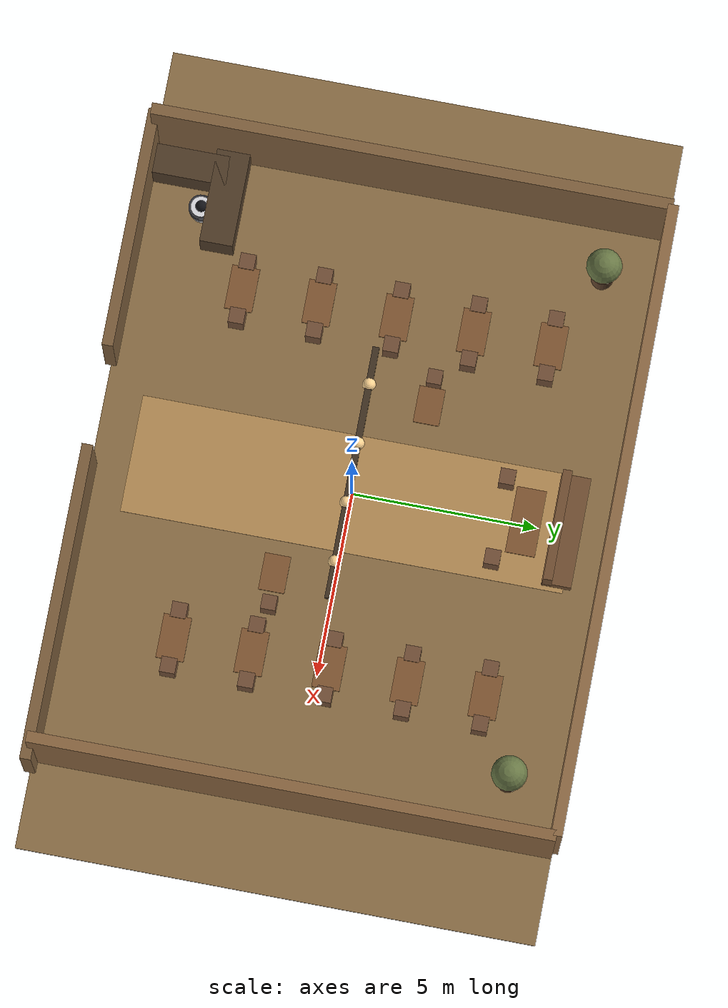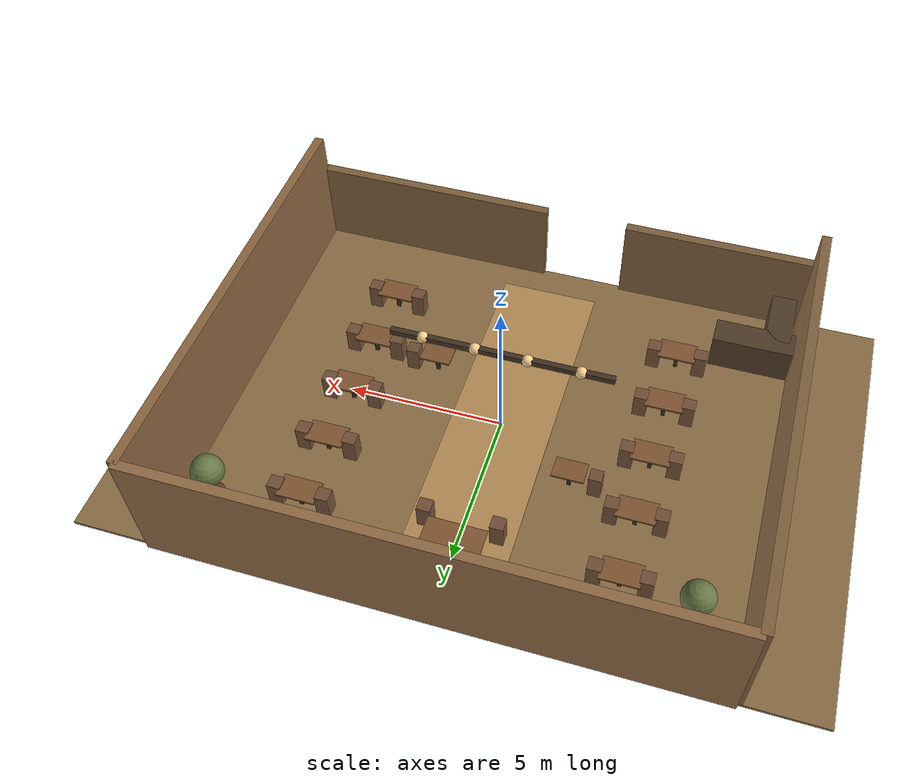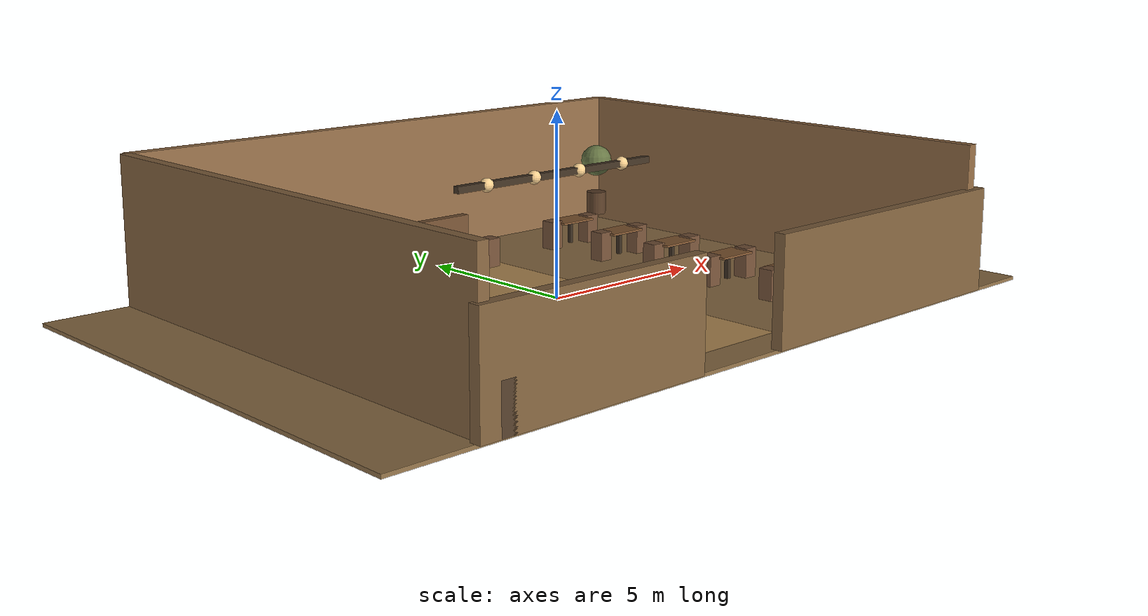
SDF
<?xml version="1.0" ?>
<sdf version="1.9">
  <world name="restaurant_world_warm_dense">

    <gravity>0 0 -9.8</gravity>

    <physics name="default_physics" type="ode">
      <max_step_size>0.008</max_step_size>
      <real_time_factor>1.0</real_time_factor>
    </physics>

    <plugin filename="gz-sim-physics-system" name="gz::sim::systems::Physics"/>
    <plugin filename="gz-sim-user-commands-system" name="gz::sim::systems::UserCommands"/>
    <plugin filename="gz-sim-scene-broadcaster-system" name="gz::sim::systems::SceneBroadcaster"/>

    <scene>
      <ambient>0.22 0.18 0.12 1</ambient>
      <background>0.20 0.16 0.12 1</background>
      <shadows>false</shadows>
    </scene>

    <!-- =========================
         LIGHTING - warm and lighter on performance
         ========================= -->
    <light name="soft_fill" type="directional">
      <cast_shadows>false</cast_shadows>
      <pose>0 0 20 0 0 0</pose>
      <diffuse>0.45 0.36 0.24 1</diffuse>
      <specular>0.03 0.03 0.03 1</specular>
      <direction>-0.2 0.1 -0.97</direction>
    </light>

    <light name="main_warm_1" type="point">
      <pose>-3.0 0.0 3.0 0 0 0</pose>
      <diffuse>0.95 0.74 0.42 1</diffuse>
      <specular>0.08 0.06 0.04 1</specular>
      <attenuation>
        <range>18</range>
        <constant>0.45</constant>
        <linear>0.018</linear>
        <quadratic>0.0012</quadratic>
      </attenuation>
      <cast_shadows>false</cast_shadows>
    </light>

    <light name="main_warm_2" type="point">
      <pose>0.0 0.0 3.0 0 0 0</pose>
      <diffuse>0.95 0.74 0.42 1</diffuse>
      <specular>0.08 0.06 0.04 1</specular>
      <attenuation>
        <range>18</range>
        <constant>0.45</constant>
        <linear>0.018</linear>
        <quadratic>0.0012</quadratic>
      </attenuation>
      <cast_shadows>false</cast_shadows>
    </light>

    <light name="main_warm_3" type="point">
      <pose>3.0 0.0 3.0 0 0 0</pose>
      <diffuse>0.95 0.74 0.42 1</diffuse>
      <specular>0.08 0.06 0.04 1</specular>
      <attenuation>
        <range>18</range>
        <constant>0.45</constant>
        <linear>0.018</linear>
        <quadratic>0.0012</quadratic>
      </attenuation>
      <cast_shadows>false</cast_shadows>
    </light>

    <light name="rear_warm" type="point">
      <pose>0.0 5.3 2.7 0 0 0</pose>
      <diffuse>0.85 0.66 0.38 1</diffuse>
      <specular>0.06 0.05 0.03 1</specular>
      <attenuation>
        <range>10</range>
        <constant>0.55</constant>
        <linear>0.025</linear>
        <quadratic>0.0018</quadratic>
      </attenuation>
      <cast_shadows>false</cast_shadows>
    </light>

    <!-- =========================
         FLOOR
         ========================= -->
    <model name="floor_main">
      <static>true</static>
      <pose>0 0 0 0 0 0</pose>
      <link name="link">
        <collision name="collision">
          <geometry><box><size>22 14 0.1</size></box></geometry>
          <pose>0 0 -0.05 0 0 0</pose>
        </collision>
        <visual name="visual">
          <geometry><box><size>22 14 0.1</size></box></geometry>
          <pose>0 0 -0.05 0 0 0</pose>
          <material>
            <ambient>0.40 0.31 0.20 1</ambient>
            <diffuse>0.56 0.44 0.28 1</diffuse>
            <specular>0.06 0.05 0.04 1</specular>
          </material>
        </visual>
      </link>
    </model>

    <model name="main_path">
      <static>true</static>
      <pose>0 0 0.006 0 0 0</pose>
      <link name="link">
        <visual name="visual">
          <geometry><box><size>3.2 12.0 0.01</size></box></geometry>
          <material>
            <ambient>0.56 0.43 0.26 1</ambient>
            <diffuse>0.72 0.56 0.34 1</diffuse>
            <specular>0.04 0.03 0.02 1</specular>
          </material>
        </visual>
      </link>
    </model>

    <!-- =========================
         WALLS
         ========================= -->
    <model name="east_wall">
      <static>true</static>
      <pose>8.5 0 2.0 0 0 0</pose>
      <link name="link">
        <collision name="collision"><geometry><box><size>0.30 14.0 4.0</size></box></geometry></collision>
        <visual name="visual">
          <geometry><box><size>0.30 14.0 4.0</size></box></geometry>
          <material>
            <ambient>0.38 0.28 0.18 1</ambient>
            <diffuse>0.56 0.41 0.26 1</diffuse>
            <specular>0.03 0.03 0.02 1</specular>
          </material>
        </visual>
      </link>
    </model>

    <model name="west_wall">
      <static>true</static>
      <pose>-8.5 0 2.0 0 0 0</pose>
      <link name="link">
        <collision name="collision"><geometry><box><size>0.30 14.0 4.0</size></box></geometry></collision>
        <visual name="visual">
          <geometry><box><size>0.30 14.0 4.0</size></box></geometry>
          <material>
            <ambient>0.36 0.27 0.18 1</ambient>
            <diffuse>0.52 0.39 0.25 1</diffuse>
            <specular>0.03 0.03 0.02 1</specular>
          </material>
        </visual>
      </link>
    </model>

    <model name="north_wall">
      <static>true</static>
      <pose>0 7 2.0 0 0 0</pose>
      <link name="link">
        <collision name="collision"><geometry><box><size>17.0 0.30 4.0</size></box></geometry></collision>
        <visual name="visual">
          <geometry><box><size>17.0 0.30 4.0</size></box></geometry>
          <material>
            <ambient>0.40 0.30 0.20 1</ambient>
            <diffuse>0.58 0.43 0.28 1</diffuse>
            <specular>0.03 0.03 0.02 1</specular>
          </material>
        </visual>
      </link>
    </model>

    <model name="south_wall_left">
      <static>true</static>
      <pose>-5.5 -7 1.4 0 0 0</pose>
      <link name="link">
        <collision name="collision"><geometry><box><size>6.5 0.30 2.8</size></box></geometry></collision>
        <visual name="visual">
          <geometry><box><size>6.5 0.30 2.8</size></box></geometry>
          <material>
            <ambient>0.34 0.26 0.17 1</ambient>
            <diffuse>0.50 0.38 0.24 1</diffuse>
          </material>
        </visual>
      </link>
    </model>

    <model name="south_wall_right">
      <static>true</static>
      <pose>4.7 -7 1.4 0 0 0</pose>
      <link name="link">
        <collision name="collision"><geometry><box><size>8.5 0.30 2.8</size></box></geometry></collision>
        <visual name="visual">
          <geometry><box><size>8.5 0.30 2.8</size></box></geometry>
          <material>
            <ambient>0.34 0.26 0.17 1</ambient>
            <diffuse>0.50 0.38 0.24 1</diffuse>
          </material>
        </visual>
      </link>
    </model>

    <!-- =========================
         CEILING BAR
         ========================= -->
    <model name="ceiling_bar">
      <static>true</static>
      <pose>0 0 3.35 0 0 0</pose>
      <link name="link">
        <visual name="bar">
          <geometry><box><size>6.8 0.18 0.18</size></box></geometry>
          <material>
            <ambient>0.18 0.14 0.10 1</ambient>
            <diffuse>0.26 0.20 0.14 1</diffuse>
          </material>
        </visual>
        <visual name="glow_a">
          <pose>-2.4 0 0 0 0 0</pose>
          <geometry><sphere><radius>0.18</radius></sphere></geometry>
          <material><ambient>1.0 0.90 0.70 1</ambient><diffuse>1.0 0.84 0.58 1</diffuse></material>
        </visual>
        <visual name="glow_b">
          <pose>-0.8 0 0 0 0 0</pose>
          <geometry><sphere><radius>0.18</radius></sphere></geometry>
          <material><ambient>1.0 0.90 0.70 1</ambient><diffuse>1.0 0.84 0.58 1</diffuse></material>
        </visual>
        <visual name="glow_c">
          <pose>0.8 0 0 0 0 0</pose>
          <geometry><sphere><radius>0.18</radius></sphere></geometry>
          <material><ambient>1.0 0.90 0.70 1</ambient><diffuse>1.0 0.84 0.58 1</diffuse></material>
        </visual>
        <visual name="glow_d">
          <pose>2.4 0 0 0 0 0</pose>
          <geometry><sphere><radius>0.18</radius></sphere></geometry>
          <material><ambient>1.0 0.90 0.70 1</ambient><diffuse>1.0 0.84 0.58 1</diffuse></material>
        </visual>
      </link>
    </model>

    <!-- =========================
         SERVICE AREA
         ========================= -->
    <model name="service_counter_left">
      <static>true</static>
      <pose>-7.2 -4.8 0.60 0 0 0</pose>
      <link name="link">
        <collision name="collision"><geometry><box><size>2.8 0.9 1.2</size></box></geometry></collision>
        <visual name="visual">
          <geometry><box><size>2.8 0.9 1.2</size></box></geometry>
          <material>
            <ambient>0.22 0.16 0.11 1</ambient>
            <diffuse>0.32 0.24 0.16 1</diffuse>
            <specular>0.04 0.03 0.02 1</specular>
          </material>
        </visual>
      </link>
    </model>

    <model name="service_counter_back">
      <static>true</static>
      <pose>-7.8 -6.0 0.60 0 0 1.5708</pose>
      <link name="link">
        <collision name="collision"><geometry><box><size>2.3 0.8 1.2</size></box></geometry></collision>
        <visual name="visual">
          <geometry><box><size>2.3 0.8 1.2</size></box></geometry>
          <material>
            <ambient>0.22 0.16 0.11 1</ambient>
            <diffuse>0.32 0.24 0.16 1</diffuse>
            <specular>0.04 0.03 0.02 1</specular>
          </material>
        </visual>
      </link>
    </model>

    <!-- =========================
         DECOR
         ========================= -->
    <model name="plant_left">
      <static>true</static>
      <pose>-6.9 5.5 0.55 0 0 0</pose>
      <link name="link">
        <visual name="pot">
          <pose>0 0 0.35 0 0 0</pose>
          <geometry><cylinder><radius>0.30</radius><length>0.70</length></cylinder></geometry>
          <material><ambient>0.26 0.18 0.12 1</ambient><diffuse>0.36 0.25 0.16 1</diffuse></material>
        </visual>
        <visual name="leaf">
          <pose>0 0 1.7 0 0 0</pose>
          <geometry><sphere><radius>0.48</radius></sphere></geometry>
          <material><ambient>0.30 0.34 0.20 1</ambient><diffuse>0.42 0.48 0.28 1</diffuse></material>
        </visual>
      </link>
    </model>

    <model name="plant_right">
      <static>true</static>
      <pose>6.9 5.5 0.55 0 0 0</pose>
      <link name="link">
        <visual name="pot">
          <pose>0 0 0.35 0 0 0</pose>
          <geometry><cylinder><radius>0.30</radius><length>0.70</length></cylinder></geometry>
          <material><ambient>0.26 0.18 0.12 1</ambient><diffuse>0.36 0.25 0.16 1</diffuse></material>
        </visual>
        <visual name="leaf">
          <pose>0 0 1.7 0 0 0</pose>
          <geometry><sphere><radius>0.48</radius></sphere></geometry>
          <material><ambient>0.30 0.34 0.20 1</ambient><diffuse>0.42 0.48 0.28 1</diffuse></material>
        </visual>
      </link>
    </model>

    <!-- =========================
         TABLES AND CHAIRS - increased quantity
         ========================= -->

    <!-- Left side tables -->
    <model name="table_a">
      <static>true</static><pose>-4.8 4.5 0.76 0 0 0</pose>
      <link name="link">
        <collision name="collision"><geometry><box><size>1.20 0.75 0.06</size></box></geometry></collision>
        <visual name="top"><geometry><box><size>1.20 0.75 0.06</size></box></geometry><material><ambient>0.36 0.24 0.14 1</ambient><diffuse>0.52 0.35 0.20 1</diffuse></material></visual>
        <visual name="leg"><pose>0 0 -0.35 0 0 0</pose><geometry><box><size>0.12 0.12 0.70</size></box></geometry><material><ambient>0.16 0.12 0.09 1</ambient><diffuse>0.22 0.17 0.12 1</diffuse></material></visual>
      </link>
    </model>
    <model name="chair_a1"><static>true</static><pose>-5.55 4.5 0.42 0 0 0</pose><link name="link"><visual name="v"><geometry><box><size>0.42 0.42 0.84</size></box></geometry><material><ambient>0.34 0.24 0.16 1</ambient><diffuse>0.46 0.32 0.22 1</diffuse></material></visual></link></model>
    <model name="chair_a2"><static>true</static><pose>-4.05 4.5 0.42 0 0 0</pose><link name="link"><visual name="v"><geometry><box><size>0.42 0.42 0.84</size></box></geometry><material><ambient>0.34 0.24 0.16 1</ambient><diffuse>0.46 0.32 0.22 1</diffuse></material></visual></link></model>

    <model name="table_b">
      <static>true</static><pose>-4.8 2.4 0.76 0 0 0</pose>
      <link name="link">
        <collision name="collision"><geometry><box><size>1.20 0.75 0.06</size></box></geometry></collision>
        <visual name="top"><geometry><box><size>1.20 0.75 0.06</size></box></geometry><material><ambient>0.36 0.24 0.14 1</ambient><diffuse>0.52 0.35 0.20 1</diffuse></material></visual>
        <visual name="leg"><pose>0 0 -0.35 0 0 0</pose><geometry><box><size>0.12 0.12 0.70</size></box></geometry><material><ambient>0.16 0.12 0.09 1</ambient><diffuse>0.22 0.17 0.12 1</diffuse></material></visual>
      </link>
    </model>
    <model name="chair_b1"><static>true</static><pose>-5.55 2.4 0.42 0 0 0</pose><link name="link"><visual name="v"><geometry><box><size>0.42 0.42 0.84</size></box></geometry><material><ambient>0.34 0.24 0.16 1</ambient><diffuse>0.46 0.32 0.22 1</diffuse></material></visual></link></model>
    <model name="chair_b2"><static>true</static><pose>-4.05 2.4 0.42 0 0 0</pose><link name="link"><visual name="v"><geometry><box><size>0.42 0.42 0.84</size></box></geometry><material><ambient>0.34 0.24 0.16 1</ambient><diffuse>0.46 0.32 0.22 1</diffuse></material></visual></link></model>

    <model name="table_c">
      <static>true</static><pose>-4.8 0.3 0.76 0 0 0</pose>
      <link name="link">
        <collision name="collision"><geometry><box><size>1.20 0.75 0.06</size></box></geometry></collision>
        <visual name="top"><geometry><box><size>1.20 0.75 0.06</size></box></geometry><material><ambient>0.36 0.24 0.14 1</ambient><diffuse>0.52 0.35 0.20 1</diffuse></material></visual>
        <visual name="leg"><pose>0 0 -0.35 0 0 0</pose><geometry><box><size>0.12 0.12 0.70</size></box></geometry><material><ambient>0.16 0.12 0.09 1</ambient><diffuse>0.22 0.17 0.12 1</diffuse></material></visual>
      </link>
    </model>
    <model name="chair_c1"><static>true</static><pose>-5.55 0.3 0.42 0 0 0</pose><link name="link"><visual name="v"><geometry><box><size>0.42 0.42 0.84</size></box></geometry><material><ambient>0.34 0.24 0.16 1</ambient><diffuse>0.46 0.32 0.22 1</diffuse></material></visual></link></model>
    <model name="chair_c2"><static>true</static><pose>-4.05 0.3 0.42 0 0 0</pose><link name="link"><visual name="v"><geometry><box><size>0.42 0.42 0.84</size></box></geometry><material><ambient>0.34 0.24 0.16 1</ambient><diffuse>0.46 0.32 0.22 1</diffuse></material></visual></link></model>

    <model name="table_d">
      <static>true</static><pose>-4.8 -1.8 0.76 0 0 0</pose>
      <link name="link">
        <collision name="collision"><geometry><box><size>1.20 0.75 0.06</size></box></geometry></collision>
        <visual name="top"><geometry><box><size>1.20 0.75 0.06</size></box></geometry><material><ambient>0.36 0.24 0.14 1</ambient><diffuse>0.52 0.35 0.20 1</diffuse></material></visual>
        <visual name="leg"><pose>0 0 -0.35 0 0 0</pose><geometry><box><size>0.12 0.12 0.70</size></box></geometry><material><ambient>0.16 0.12 0.09 1</ambient><diffuse>0.22 0.17 0.12 1</diffuse></material></visual>
      </link>
    </model>
    <model name="chair_d1"><static>true</static><pose>-5.55 -1.8 0.42 0 0 0</pose><link name="link"><visual name="v"><geometry><box><size>0.42 0.42 0.84</size></box></geometry><material><ambient>0.34 0.24 0.16 1</ambient><diffuse>0.46 0.32 0.22 1</diffuse></material></visual></link></model>
    <model name="chair_d2"><static>true</static><pose>-4.05 -1.8 0.42 0 0 0</pose><link name="link"><visual name="v"><geometry><box><size>0.42 0.42 0.84</size></box></geometry><material><ambient>0.34 0.24 0.16 1</ambient><diffuse>0.46 0.32 0.22 1</diffuse></material></visual></link></model>

    <model name="table_e">
      <static>true</static><pose>-4.8 -3.9 0.76 0 0 0</pose>
      <link name="link">
        <collision name="collision"><geometry><box><size>1.20 0.75 0.06</size></box></geometry></collision>
        <visual name="top"><geometry><box><size>1.20 0.75 0.06</size></box></geometry><material><ambient>0.36 0.24 0.14 1</ambient><diffuse>0.52 0.35 0.20 1</diffuse></material></visual>
        <visual name="leg"><pose>0 0 -0.35 0 0 0</pose><geometry><box><size>0.12 0.12 0.70</size></box></geometry><material><ambient>0.16 0.12 0.09 1</ambient><diffuse>0.22 0.17 0.12 1</diffuse></material></visual>
      </link>
    </model>
    <model name="chair_e1"><static>true</static><pose>-5.55 -3.9 0.42 0 0 0</pose><link name="link"><visual name="v"><geometry><box><size>0.42 0.42 0.84</size></box></geometry><material><ambient>0.34 0.24 0.16 1</ambient><diffuse>0.46 0.32 0.22 1</diffuse></material></visual></link></model>
    <model name="chair_e2"><static>true</static><pose>-4.05 -3.9 0.42 0 0 0</pose><link name="link"><visual name="v"><geometry><box><size>0.42 0.42 0.84</size></box></geometry><material><ambient>0.34 0.24 0.16 1</ambient><diffuse>0.46 0.32 0.22 1</diffuse></material></visual></link></model>

    <!-- Right side tables -->
    <model name="table_f">
      <static>true</static><pose>4.8 4.5 0.76 0 0 0</pose>
      <link name="link">
        <collision name="collision"><geometry><box><size>1.20 0.75 0.06</size></box></geometry></collision>
        <visual name="top"><geometry><box><size>1.20 0.75 0.06</size></box></geometry><material><ambient>0.36 0.24 0.14 1</ambient><diffuse>0.52 0.35 0.20 1</diffuse></material></visual>
        <visual name="leg"><pose>0 0 -0.35 0 0 0</pose><geometry><box><size>0.12 0.12 0.70</size></box></geometry><material><ambient>0.16 0.12 0.09 1</ambient><diffuse>0.22 0.17 0.12 1</diffuse></material></visual>
      </link>
    </model>
    <model name="chair_f1"><static>true</static><pose>4.05 4.5 0.42 0 0 0</pose><link name="link"><visual name="v"><geometry><box><size>0.42 0.42 0.84</size></box></geometry><material><ambient>0.34 0.24 0.16 1</ambient><diffuse>0.46 0.32 0.22 1</diffuse></material></visual></link></model>
    <model name="chair_f2"><static>true</static><pose>5.55 4.5 0.42 0 0 0</pose><link name="link"><visual name="v"><geometry><box><size>0.42 0.42 0.84</size></box></geometry><material><ambient>0.34 0.24 0.16 1</ambient><diffuse>0.46 0.32 0.22 1</diffuse></material></visual></link></model>

    <model name="table_g">
      <static>true</static><pose>4.8 2.4 0.76 0 0 0</pose>
      <link name="link">
        <collision name="collision"><geometry><box><size>1.20 0.75 0.06</size></box></geometry></collision>
        <visual name="top"><geometry><box><size>1.20 0.75 0.06</size></box></geometry><material><ambient>0.36 0.24 0.14 1</ambient><diffuse>0.52 0.35 0.20 1</diffuse></material></visual>
        <visual name="leg"><pose>0 0 -0.35 0 0 0</pose><geometry><box><size>0.12 0.12 0.70</size></box></geometry><material><ambient>0.16 0.12 0.09 1</ambient><diffuse>0.22 0.17 0.12 1</diffuse></material></visual>
      </link>
    </model>
    <model name="chair_g1"><static>true</static><pose>4.05 2.4 0.42 0 0 0</pose><link name="link"><visual name="v"><geometry><box><size>0.42 0.42 0.84</size></box></geometry><material><ambient>0.34 0.24 0.16 1</ambient><diffuse>0.46 0.32 0.22 1</diffuse></material></visual></link></model>
    <model name="chair_g2"><static>true</static><pose>5.55 2.4 0.42 0 0 0</pose><link name="link"><visual name="v"><geometry><box><size>0.42 0.42 0.84</size></box></geometry><material><ambient>0.34 0.24 0.16 1</ambient><diffuse>0.46 0.32 0.22 1</diffuse></material></visual></link></model>

    <model name="table_h">
      <static>true</static><pose>4.8 0.3 0.76 0 0 0</pose>
      <link name="link">
        <collision name="collision"><geometry><box><size>1.20 0.75 0.06</size></box></geometry></collision>
        <visual name="top"><geometry><box><size>1.20 0.75 0.06</size></box></geometry><material><ambient>0.36 0.24 0.14 1</ambient><diffuse>0.52 0.35 0.20 1</diffuse></material></visual>
        <visual name="leg"><pose>0 0 -0.35 0 0 0</pose><geometry><box><size>0.12 0.12 0.70</size></box></geometry><material><ambient>0.16 0.12 0.09 1</ambient><diffuse>0.22 0.17 0.12 1</diffuse></material></visual>
      </link>
    </model>
    <model name="chair_h1"><static>true</static><pose>4.05 0.3 0.42 0 0 0</pose><link name="link"><visual name="v"><geometry><box><size>0.42 0.42 0.84</size></box></geometry><material><ambient>0.34 0.24 0.16 1</ambient><diffuse>0.46 0.32 0.22 1</diffuse></material></visual></link></model>
    <model name="chair_h2"><static>true</static><pose>5.55 0.3 0.42 0 0 0</pose><link name="link"><visual name="v"><geometry><box><size>0.42 0.42 0.84</size></box></geometry><material><ambient>0.34 0.24 0.16 1</ambient><diffuse>0.46 0.32 0.22 1</diffuse></material></visual></link></model>

    <model name="table_i">
      <static>true</static><pose>4.8 -1.8 0.76 0 0 0</pose>
      <link name="link">
        <collision name="collision"><geometry><box><size>1.20 0.75 0.06</size></box></geometry></collision>
        <visual name="top"><geometry><box><size>1.20 0.75 0.06</size></box></geometry><material><ambient>0.36 0.24 0.14 1</ambient><diffuse>0.52 0.35 0.20 1</diffuse></material></visual>
        <visual name="leg"><pose>0 0 -0.35 0 0 0</pose><geometry><box><size>0.12 0.12 0.70</size></box></geometry><material><ambient>0.16 0.12 0.09 1</ambient><diffuse>0.22 0.17 0.12 1</diffuse></material></visual>
      </link>
    </model>
    <model name="chair_i1"><static>true</static><pose>4.05 -1.8 0.42 0 0 0</pose><link name="link"><visual name="v"><geometry><box><size>0.42 0.42 0.84</size></box></geometry><material><ambient>0.34 0.24 0.16 1</ambient><diffuse>0.46 0.32 0.22 1</diffuse></material></visual></link></model>
    <model name="chair_i2"><static>true</static><pose>5.55 -1.8 0.42 0 0 0</pose><link name="link"><visual name="v"><geometry><box><size>0.42 0.42 0.84</size></box></geometry><material><ambient>0.34 0.24 0.16 1</ambient><diffuse>0.46 0.32 0.22 1</diffuse></material></visual></link></model>

    <model name="table_j">
      <static>true</static><pose>4.8 -3.9 0.76 0 0 0</pose>
      <link name="link">
        <collision name="collision"><geometry><box><size>1.20 0.75 0.06</size></box></geometry></collision>
        <visual name="top"><geometry><box><size>1.20 0.75 0.06</size></box></geometry><material><ambient>0.36 0.24 0.14 1</ambient><diffuse>0.52 0.35 0.20 1</diffuse></material></visual>
        <visual name="leg"><pose>0 0 -0.35 0 0 0</pose><geometry><box><size>0.12 0.12 0.70</size></box></geometry><material><ambient>0.16 0.12 0.09 1</ambient><diffuse>0.22 0.17 0.12 1</diffuse></material></visual>
      </link>
    </model>
    <model name="chair_j1"><static>true</static><pose>4.05 -3.9 0.42 0 0 0</pose><link name="link"><visual name="v"><geometry><box><size>0.42 0.42 0.84</size></box></geometry><material><ambient>0.34 0.24 0.16 1</ambient><diffuse>0.46 0.32 0.22 1</diffuse></material></visual></link></model>
    <model name="chair_j2"><static>true</static><pose>5.55 -3.9 0.42 0 0 0</pose><link name="link"><visual name="v"><geometry><box><size>0.42 0.42 0.84</size></box></geometry><material><ambient>0.34 0.24 0.16 1</ambient><diffuse>0.46 0.32 0.22 1</diffuse></material></visual></link></model>

    <!-- Rear wall booth -->
    <model name="rear_bench">
      <static>true</static><pose>0 5.8 0.35 0 0 0</pose>
      <link name="link">
        <visual name="seat"><geometry><box><size>3.0 0.8 0.42</size></box></geometry><material><ambient>0.32 0.22 0.14 1</ambient><diffuse>0.46 0.32 0.20 1</diffuse></material></visual>
        <visual name="back"><pose>0 -0.25 0.45 0 0 0</pose><geometry><box><size>3.0 0.25 0.90</size></box></geometry><material><ambient>0.32 0.22 0.14 1</ambient><diffuse>0.46 0.32 0.20 1</diffuse></material></visual>
      </link>
    </model>

    <model name="rear_table">
      <static>true</static><pose>0 4.7 0.76 0 0 0</pose>
      <link name="link">
        <collision name="collision"><geometry><box><size>1.80 0.80 0.06</size></box></geometry></collision>
        <visual name="top"><geometry><box><size>1.80 0.80 0.06</size></box></geometry><material><ambient>0.36 0.24 0.14 1</ambient><diffuse>0.52 0.35 0.20 1</diffuse></material></visual>
        <visual name="leg"><pose>0 0 -0.35 0 0 0</pose><geometry><box><size>0.14 0.14 0.70</size></box></geometry><material><ambient>0.16 0.12 0.09 1</ambient><diffuse>0.22 0.17 0.12 1</diffuse></material></visual>
      </link>
    </model>
    <model name="rear_chair_l"><static>true</static><pose>-1.1 4.0 0.42 0 0 0</pose><link name="link"><visual name="v"><geometry><box><size>0.42 0.42 0.84</size></box></geometry><material><ambient>0.34 0.24 0.16 1</ambient><diffuse>0.46 0.32 0.22 1</diffuse></material></visual></link></model>
    <model name="rear_chair_r"><static>true</static><pose>1.1 4.0 0.42 0 0 0</pose><link name="link"><visual name="v"><geometry><box><size>0.42 0.42 0.84</size></box></geometry><material><ambient>0.34 0.24 0.16 1</ambient><diffuse>0.46 0.32 0.22 1</diffuse></material></visual></link></model>

    <!-- Small center-side tables near path but leaving clearance -->
    <model name="mid_left_table">
      <static>true</static><pose>-2.6 1.6 0.76 0 0 0</pose>
      <link name="link">
        <collision name="collision"><geometry><box><size>1.0 0.7 0.06</size></box></geometry></collision>
        <visual name="top"><geometry><box><size>1.0 0.7 0.06</size></box></geometry><material><ambient>0.36 0.24 0.14 1</ambient><diffuse>0.52 0.35 0.20 1</diffuse></material></visual>
        <visual name="leg"><pose>0 0 -0.35 0 0 0</pose><geometry><box><size>0.12 0.12 0.70</size></box></geometry><material><ambient>0.16 0.12 0.09 1</ambient><diffuse>0.22 0.17 0.12 1</diffuse></material></visual>
      </link>
    </model>
    <model name="mid_left_chair"><static>true</static><pose>-3.4 1.6 0.42 0 0 0</pose><link name="link"><visual name="v"><geometry><box><size>0.40 0.40 0.82</size></box></geometry><material><ambient>0.34 0.24 0.16 1</ambient><diffuse>0.46 0.32 0.22 1</diffuse></material></visual></link></model>

    <model name="mid_right_table">
      <static>true</static><pose>2.6 -1.6 0.76 0 0 0</pose>
      <link name="link">
        <collision name="collision"><geometry><box><size>1.0 0.7 0.06</size></box></geometry></collision>
        <visual name="top"><geometry><box><size>1.0 0.7 0.06</size></box></geometry><material><ambient>0.36 0.24 0.14 1</ambient><diffuse>0.52 0.35 0.20 1</diffuse></material></visual>
        <visual name="leg"><pose>0 0 -0.35 0 0 0</pose><geometry><box><size>0.12 0.12 0.70</size></box></geometry><material><ambient>0.16 0.12 0.09 1</ambient><diffuse>0.22 0.17 0.12 1</diffuse></material></visual>
      </link>
    </model>
    <model name="mid_right_chair"><static>true</static><pose>3.4 -1.6 0.42 0 0 0</pose><link name="link"><visual name="v"><geometry><box><size>0.40 0.40 0.82</size></box></geometry><material><ambient>0.34 0.24 0.16 1</ambient><diffuse>0.46 0.32 0.22 1</diffuse></material></visual></link></model>

    <!-- =========================
         ROBOT - kept
         ========================= -->
    <model name="waiter_robot">
      <static>false</static>
      <pose>-6.8 -5.4 0.38 0 0 0</pose>
      <link name="base_link">
        <collision name="collision">
          <geometry><cylinder><radius>0.28</radius><length>0.76</length></cylinder></geometry>
        </collision>

        <visual name="body">
          <geometry><cylinder><radius>0.28</radius><length>0.76</length></cylinder></geometry>
          <material>
            <ambient>0.78 0.78 0.80 1</ambient>
            <diffuse>0.88 0.88 0.90 1</diffuse>
            <specular>0.10 0.10 0.10 1</specular>
          </material>
        </visual>

        <visual name="belt">
          <pose>0 0 0.12 0 0 0</pose>
          <geometry><cylinder><radius>0.30</radius><length>0.08</length></cylinder></geometry>
          <material>
            <ambient>0.08 0.08 0.09 1</ambient>
            <diffuse>0.14 0.14 0.15 1</diffuse>
          </material>
        </visual>

        <visual name="tray_1">
          <pose>0 0 0.08 0 0 0</pose>
          <geometry><cylinder><radius>0.34</radius><length>0.03</length></cylinder></geometry>
          <material>
            <ambient>0.14 0.14 0.15 1</ambient>
            <diffuse>0.20 0.20 0.22 1</diffuse>
            <specular>0.08 0.08 0.08 1</specular>
          </material>
        </visual>

        <visual name="tray_2">
          <pose>0 0 0.32 0 0 0</pose>
          <geometry><cylinder><radius>0.34</radius><length>0.03</length></cylinder></geometry>
          <material>
            <ambient>0.14 0.14 0.15 1</ambient>
            <diffuse>0.20 0.20 0.22 1</diffuse>
            <specular>0.08 0.08 0.08 1</specular>
          </material>
        </visual>

        <visual name="head">
          <pose>0 0 0.46 0 0 0</pose>
          <geometry><sphere><radius>0.16</radius></sphere></geometry>
          <material>
            <ambient>0.04 0.04 0.05 1</ambient>
            <diffuse>0.08 0.08 0.10 1</diffuse>
            <specular>0.06 0.06 0.06 1</specular>
          </material>
        </visual>

        <visual name="accent">
          <pose>0 0 0.47 0 0 0</pose>
          <geometry><sphere><radius>0.10</radius></sphere></geometry>
          <material>
            <ambient>1.0 0.90 0.70 1</ambient>
            <diffuse>1.0 0.86 0.62 1</diffuse>
            <specular>0.08 0.08 0.06 1</specular>
          </material>
        </visual>
      </link>
    </model>

  </world>
</sdf>
